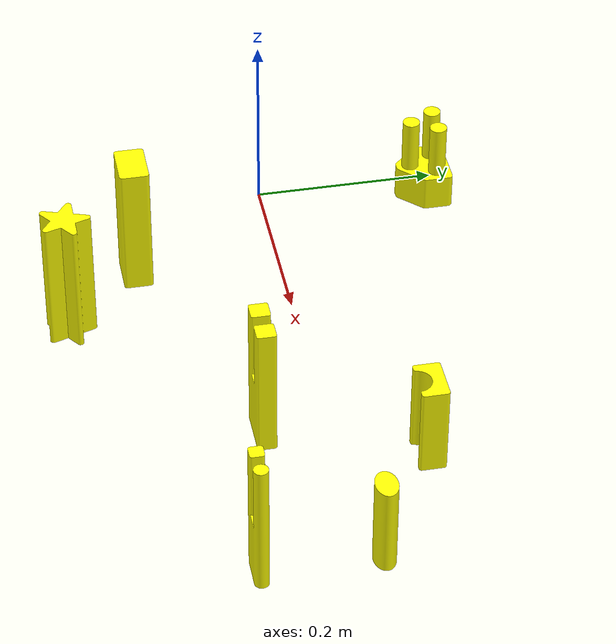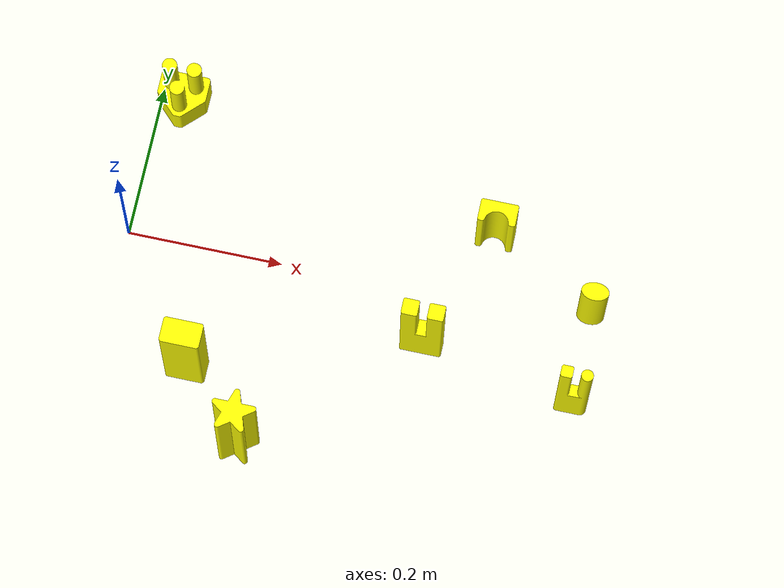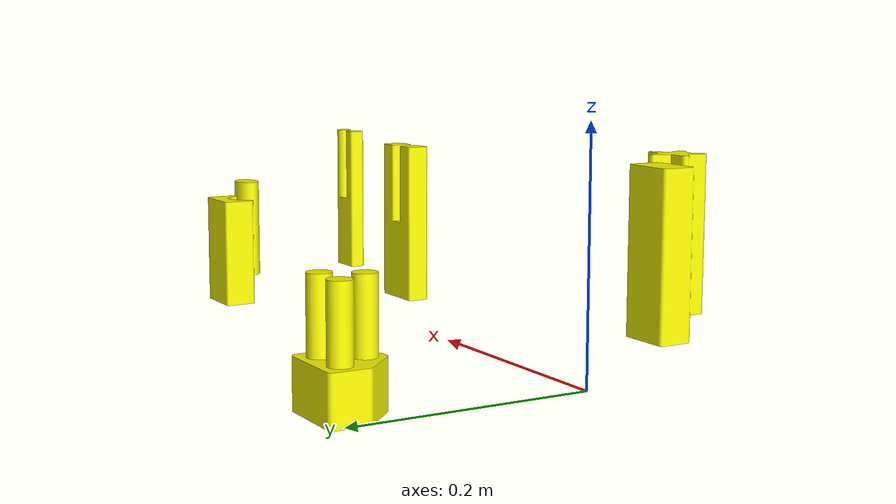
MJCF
<?xml version='1.0' encoding='utf-8'?>
<mujoco model="obj2">
  <asset>
    <mesh name="obj2" file="obj2.obj" scale="0.001 0.001 0.001" />
    <material name="mat2" rgba="1 1 0 1" />
  </asset>
  <worldbody>
    <body>
      <body name="object">
        <geom name="visual" mesh="obj2" type="mesh" group="1" contype="0" conaffinity="0" material="mat2" />
        <geom name="collision" mesh="obj2" type="mesh" group="0" density="50" friction="0.95 0.3 0.1" solimp="0.998 0.998 0.001" solref="0.001 1" condim="4" />
      </body>
      <site name="bottom_site" pos="0 0 -0.025" size="0.005" rgba="0 0 0 0" />
      <site name="top_site" pos="0 0 0.025" size="0.005" rgba="0 0 0 0" />
      <site name="horizontal_radius_site" pos="0.03 0.03 0" size="0.005" rgba="0 0 0 0" />
    </body>
  </worldbody>
</mujoco>
